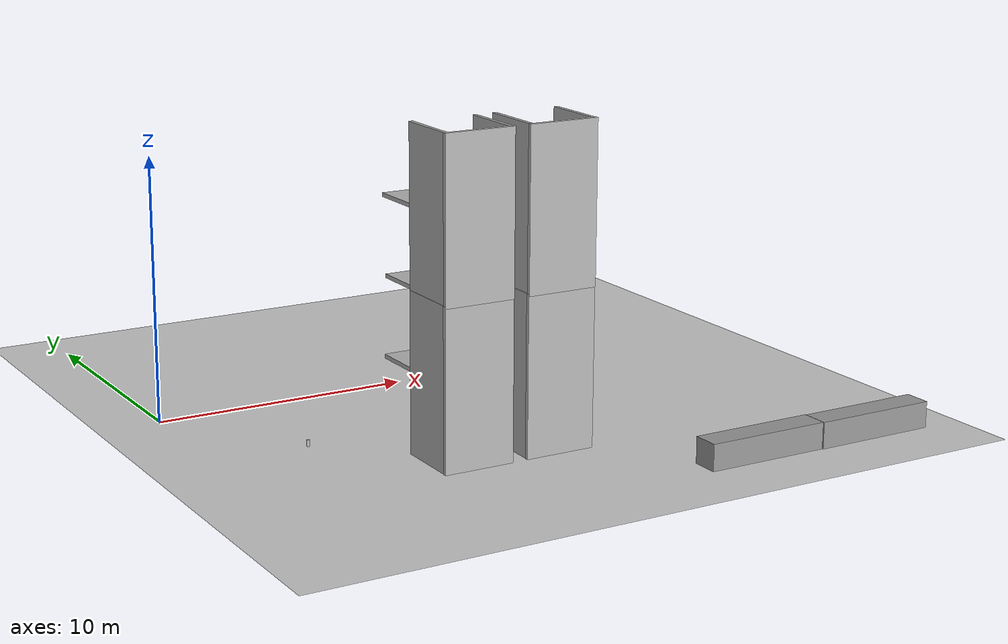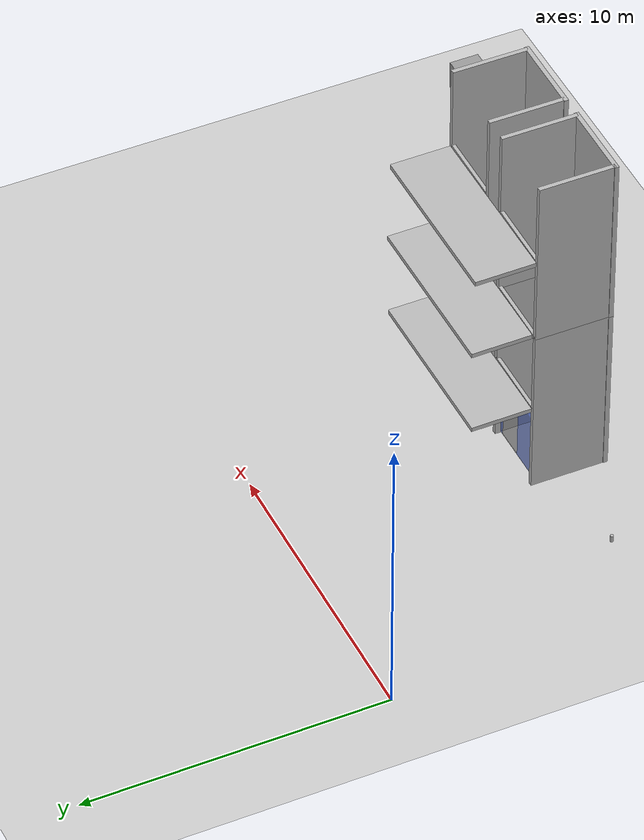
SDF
<sdf version="1.7">
 <world name="default">
  <model name="my_ground_plane">
   <static>1</static>
   <link name="link">
    <collision name="collision">
     <geometry><plane><normal>0 0 1</normal><size>6 6</size></plane></geometry>
     <surface><friction><ode><mu2>1</mu2><mu1>1</mu1></ode></friction></surface>
    </collision>
    <visual name="visual">
     <geometry><plane><normal>0 0 1</normal><size>46 46</size></plane></geometry>
     <cast_shadows>0</cast_shadows>
     <material>
      <script>
       <uri>model://my_ground_plane/materials/scripts</uri>
       <uri>model://my_ground_plane/materials/textures</uri>
       <name>MyGroundPlane/Texture1</name>
      </script>
     </material>
    </visual>
   </link>
   <pose>2.78178 3.19727 0 0 -0 0</pose>
  </model>
  <model name="beer">
   <link name="link">
    <pose>0 0 0.115 0 -0 0</pose>
    <inertial>
     <mass>0.39</mass>
     <inertia><ixx>0.00058</ixx><ixy>0</ixy><ixz>0</ixz><iyy>0.00058</iyy><iyz>0</iyz><izz>0.00019</izz></inertia>
    </inertial>
    <collision name="collision">
     <geometry><cylinder><radius>0.055</radius><length>0.23</length></cylinder></geometry>
    </collision>
    <visual name="visual">
     <geometry><cylinder><radius>0.055</radius><length>0.23</length></cylinder></geometry>
     <material>
      <script>
       <uri>model://beer/materials/scripts</uri>
       <uri>model://beer/materials/textures</uri>
       <name>Beer/Diffuse</name>
      </script>
     </material>
    </visual>
   </link>
   <pose>2.13181 -8.25349 1.19999 -2.5e-05 -4.4e-05 -0.000746</pose>
  </model>
  <model name="unit_box">
   <pose>21.7528 -14.0638 0.498243 -0 -0.000732 1e-05</pose>
   <link name="link">
    <inertial>
     <mass>1</mass>
     <inertia>
      <ixx>0.166667</ixx>
      <ixy>0</ixy>
      <ixz>0</ixz>
      <iyy>0.166667</iyy>
      <iyz>0</iyz>
      <izz>0.166667</izz>
     </inertia>
    </inertial>
    <collision name="collision"><geometry><box><size>4.79843 1 1</size></box></geometry></collision>
    <visual name="visual">
     <geometry><box><size>4.79843 1 1</size></box></geometry>
     <material>
      <script><name>Gazebo/Grey</name><uri>file://media/materials/scripts/gazebo.material</uri></script>
     </material>
    </visual>
   </link>
  </model>
  <model name="unit_box_clone">
   <pose>16.9431 -14.025 0.498243 -0 0.000732 -1e-05</pose>
   <link name="link">
    <inertial>
     <mass>1</mass>
     <inertia>
      <ixx>0.166667</ixx>
      <ixy>0</ixy>
      <ixz>0</ixz>
      <iyy>0.166667</iyy>
      <iyz>0</iyz>
      <izz>0.166667</izz>
     </inertia>
    </inertial>
    <collision name="collision"><geometry><box><size>4.79843 1 1</size></box></geometry></collision>
    <visual name="visual">
     <geometry><box><size>4.79843 1 1</size></box></geometry>
     <material>
      <script><name>Gazebo/Grey</name><uri>file://media/materials/scripts/gazebo.material</uri></script>
     </material>
    </visual>
   </link>
  </model>
  <model name="elevator">
   <pose>11 -9 0.095 0 -0 1.57</pose>
   <link name="link">
    <inertial>
     <mass>800</mass>
     <inertia><ixx>1</ixx><ixy>0</ixy><ixz>0</ixz><iyy>1</iyy><iyz>0</iyz><izz>1</izz></inertia>
    </inertial>
    <collision name="floor_collision"><geometry><box><size>2.25 2.25 0</size></box></geometry></collision>
    <visual name="floor_visual">
     <geometry><box><size>2.25 2.25 0</size></box></geometry>
     <material><script><name>Gazebo/Grey</name><uri>__default__</uri></script></material>
    </visual>
    <collision name="wall1_collision">
     <pose>1.0745 0.5725 1.125 0 -0 0</pose>
     <geometry><box><size>0.1 1.15 2.25</size></box></geometry>
    </collision>
    <visual name="wall1_visual">
     <pose>1.0745 0.5725 1.125 0 -0 0</pose>
     <geometry><box><size>0.1 1.15 2.25</size></box></geometry>
     <material><script><name>Gazebo/BlueTransparent</name><uri>__default__</uri></script></material>
    </visual>
    <collision name="wall2_collision">
     <pose>1.0745 -1.0625 1.125 0 -0 0</pose>
     <geometry><box><size>0.1 0.125 2.25</size></box></geometry>
    </collision>
    <visual name="wall2_visual">
     <pose>1.0745 -1.0625 1.125 0 -0 0</pose>
     <geometry><box><size>0.1 0.125 2.25</size></box></geometry>
     <material><script><name>Gazebo/BlueTransparent</name><uri>__default__</uri></script></material>
    </visual>
   </link>
   <link name="door">
    <pose>1.0745 -0.5 1.125 0 -0 0</pose>
    <collision name="collision"><geometry><box><size>0.08 1 2.25</size></box></geometry></collision>
    <visual name="visual">
     <geometry><box><size>0.08 1 2.25</size></box></geometry>
     <material><script><name>Gazebo/GreyTransparent</name><uri>__default__</uri></script></material>
    </visual>
    <inertial>
     <inertia><ixx>1</ixx><ixy>0</ixy><ixz>0</ixz><iyy>1</iyy><iyz>0</iyz><izz>1</izz></inertia>
     <mass>1</mass>
    </inertial>
   </link>
   <joint name="door" type="prismatic">
    <parent>link</parent>
    <child>door</child>
    <axis>
     <xyz>0 1 0</xyz>
     <limit><lower>0</lower><upper>1</upper><effort>10</effort></limit>
     <dynamics>
      <damping>2</damping>
      <spring_reference>0</spring_reference>
      <spring_stiffness>0</spring_stiffness>
     </dynamics>
    </axis>
   </joint>
   <joint name="lift" type="prismatic">
    <parent>world</parent>
    <child>link</child>
    <axis>
     <xyz>0 0 1</xyz>
     <limit><lower>0</lower><upper>10</upper><effort>100000</effort></limit>
     <dynamics>
      <damping>50</damping>
      <spring_reference>0</spring_reference>
      <spring_stiffness>0</spring_stiffness>
     </dynamics>
    </axis>
    <physics>
     <ode><implicit_spring_damper>1</implicit_spring_damper><limit><cfm>0</cfm><erp>0.2</erp></limit></ode>
    </physics>
   </joint>
   <plugin name="elevator_plugin" filename="libElevatorPlugin.so">
    <lift_joint>elevator::lift</lift_joint>
    <door_joint>elevator::door</door_joint>
    <floor_height>3.075</floor_height>
    <door_wait_time>15</door_wait_time>
    <topic>~/elevator</topic>
   </plugin>
  </model>
  <model name="elevator_shaft">
   <pose>10.9925 -8.96359 0 0 -0 1.56489</pose>
   <static>1</static>
   <link name="link">
    <collision name="shaft_wall1_collision">
     <pose>0 1.25 3 0 -0 0</pose>
     <geometry><box><size>2.5 0.15 6</size></box></geometry>
    </collision>
    <visual name="shaft_wall1_visual">
     <pose>0 1.25 3 0 -0 0</pose>
     <geometry><box><size>2.5 0.15 6</size></box></geometry>
    </visual>
    <collision name="shaft_wall2_collision">
     <pose>0 -1.25 3 0 -0 0</pose>
     <geometry><box><size>2.5 0.15 6</size></box></geometry>
    </collision>
    <visual name="shaft_wall2_visual">
     <pose>0 -1.25 3 0 -0 0</pose>
     <geometry><box><size>2.5 0.15 6</size></box></geometry>
    </visual>
    <collision name="shaft_wall3_collision">
     <pose>-1.25 0 3 0 -0 0</pose>
     <geometry><box><size>0.15 2.7 6</size></box></geometry>
    </collision>
    <visual name="shaft_wall3_visual">
     <pose>-1.25 0 3 0 -0 0</pose>
     <geometry><box><size>0.15 2.7 6</size></box></geometry>
    </visual>
    <collision name="floor0_collision">
     <pose>1.19 0 0 0 -0 0</pose>
     <geometry><box><size>0.12 2.5 0</size></box></geometry>
    </collision>
    <visual name="floor0_visual">
     <pose>1.19 0 0 0 -0 0</pose>
     <geometry><box><size>0.12 2.5 0</size></box></geometry>
    </visual>
    <collision name="floor1_collision">
     <pose>1.19 0 3.075 0 -0 0</pose>
     <geometry><box><size>0.12 2.5 0</size></box></geometry>
    </collision>
    <visual name="floor1_visual">
     <pose>1.19 0 3.075 0 -0 0</pose>
     <geometry><box><size>0.12 2.5 0</size></box></geometry>
    </visual>
   </link>
  </model>
  <model name="floor1">
   <pose>9.34723 -6.67943 3.075 0 -0 1.57226</pose>
   <static>1</static>
   <link name="link">
    <collision name="floor_collision"><geometry><box><size>2 5.78685 0.15</size></box></geometry></collision>
    <visual name="floor_visual"><geometry><box><size>2 5.78685 0.15</size></box></geometry></visual>
   </link>
  </model>
  <model name="elevator2">
   <pose>7.7 -9 0.095 0 -0 1.57</pose>
   <link name="link2">
    <inertial>
     <mass>800</mass>
     <inertia><ixx>1</ixx><ixy>0</ixy><ixz>0</ixz><iyy>1</iyy><iyz>0</iyz><izz>1</izz></inertia>
    </inertial>
    <collision name="floor_collision2"><geometry><box><size>2.25 2.25 0</size></box></geometry></collision>
    <visual name="floor_visual2">
     <geometry><box><size>2.25 2.25 0</size></box></geometry>
     <material><script><name>Gazebo/Grey</name><uri>__default__</uri></script></material>
    </visual>
    <collision name="wall1_collision2">
     <pose>1.0745 0.5725 1.125 0 -0 0</pose>
     <geometry><box><size>0.1 1.15 2.25</size></box></geometry>
    </collision>
    <visual name="wall1_visual2">
     <pose>1.0745 0.5725 1.125 0 -0 0</pose>
     <geometry><box><size>0.1 1.15 2.25</size></box></geometry>
     <material><script><name>Gazebo/BlueTransparent</name><uri>__default__</uri></script></material>
    </visual>
    <collision name="wall2_collision2">
     <pose>1.0745 -1.0625 1.125 0 -0 0</pose>
     <geometry><box><size>0.1 0.125 2.25</size></box></geometry>
    </collision>
    <visual name="wall2_visual2">
     <pose>1.0745 -1.0625 1.125 0 -0 0</pose>
     <geometry><box><size>0.1 0.125 2.25</size></box></geometry>
     <material><script><name>Gazebo/BlueTransparent</name><uri>__default__</uri></script></material>
    </visual>
   </link>
   <link name="door2">
    <pose>1.0745 -0.5 1.125 0 -0 0</pose>
    <collision name="collision2"><geometry><box><size>0.08 1 2.25</size></box></geometry></collision>
    <visual name="visual2">
     <geometry><box><size>0.08 1 2.25</size></box></geometry>
     <material><script><name>Gazebo/GreyTransparent</name><uri>__default__</uri></script></material>
    </visual>
    <inertial>
     <inertia><ixx>1</ixx><ixy>0</ixy><ixz>0</ixz><iyy>1</iyy><iyz>0</iyz><izz>1</izz></inertia>
     <mass>1</mass>
    </inertial>
   </link>
   <joint name="door2" type="prismatic">
    <parent>link2</parent>
    <child>door2</child>
    <axis>
     <xyz>0 1 0</xyz>
     <limit><lower>0</lower><upper>1</upper><effort>10</effort></limit>
     <dynamics>
      <damping>2</damping>
      <spring_reference>0</spring_reference>
      <spring_stiffness>0</spring_stiffness>
     </dynamics>
    </axis>
   </joint>
   <joint name="lift2" type="prismatic">
    <parent>world</parent>
    <child>link2</child>
    <axis>
     <xyz>0 0 1</xyz>
     <limit><lower>0</lower><upper>10</upper><effort>100000</effort></limit>
     <dynamics>
      <damping>50</damping>
      <spring_reference>0</spring_reference>
      <spring_stiffness>0</spring_stiffness>
     </dynamics>
    </axis>
    <physics>
     <ode><implicit_spring_damper>1</implicit_spring_damper><limit><cfm>0</cfm><erp>0.2</erp></limit></ode>
    </physics>
   </joint>
   <plugin name="elevator_plugin" filename="libElevatorPlugin.so">
    <lift_joint>elevator2::lift2</lift_joint>
    <door_joint>elevator2::door2</door_joint>
    <floor_height>3.075</floor_height>
    <door_wait_time>25</door_wait_time>
    <topic>~/elevator2</topic>
   </plugin>
  </model>
  <model name="elevator_shaft_clone_0">
   <static>1</static>
   <link name="link">
    <collision name="shaft_wall1_collision">
     <pose>0 1.25 3 0 -0 0</pose>
     <geometry><box><size>2.5 0.15 6</size></box></geometry>
    </collision>
    <visual name="shaft_wall1_visual">
     <pose>0 1.25 3 0 -0 0</pose>
     <geometry><box><size>2.5 0.15 6</size></box></geometry>
    </visual>
    <collision name="shaft_wall2_collision">
     <pose>0 -1.25 3 0 -0 0</pose>
     <geometry><box><size>2.5 0.15 6</size></box></geometry>
    </collision>
    <visual name="shaft_wall2_visual">
     <pose>0 -1.25 3 0 -0 0</pose>
     <geometry><box><size>2.5 0.15 6</size></box></geometry>
    </visual>
    <collision name="shaft_wall3_collision">
     <pose>-1.25 0 3 0 -0 0</pose>
     <geometry><box><size>0.15 2.7 6</size></box></geometry>
    </collision>
    <visual name="shaft_wall3_visual">
     <pose>-1.25 0 3 0 -0 0</pose>
     <geometry><box><size>0.15 2.7 6</size></box></geometry>
    </visual>
    <collision name="floor0_collision">
     <pose>1.19 0 0.075 0 -0 0</pose>
     <geometry><box><size>0.12 2.5 0.15</size></box></geometry>
    </collision>
    <visual name="floor0_visual">
     <pose>1.19 0 0.075 0 -0 0</pose>
     <geometry><box><size>0.12 2.5 0.15</size></box></geometry>
    </visual>
    <collision name="floor1_collision">
     <pose>1.19 0 3.075 0 -0 0</pose>
     <geometry><box><size>0.12 2.5 0.15</size></box></geometry>
    </collision>
    <visual name="floor1_visual">
     <pose>1.19 0 3.075 0 -0 0</pose>
     <geometry><box><size>0.12 2.5 0.15</size></box></geometry>
    </visual>
   </link>
   <pose>11.0129 -8.96752 5.91837 0 -0 1.56489</pose>
  </model>
  <model name="elevator_shaft_clone_0_clone">
   <static>1</static>
   <link name="link">
    <collision name="shaft_wall1_collision">
     <pose>0 1.25 3 0 -0 0</pose>
     <geometry><box><size>2.5 0.15 6</size></box></geometry>
    </collision>
    <visual name="shaft_wall1_visual">
     <pose>0 1.25 3 0 -0 0</pose>
     <geometry><box><size>2.5 0.15 6</size></box></geometry>
    </visual>
    <collision name="shaft_wall2_collision">
     <pose>0 -1.25 3 0 -0 0</pose>
     <geometry><box><size>2.5 0.15 6</size></box></geometry>
    </collision>
    <visual name="shaft_wall2_visual">
     <pose>0 -1.25 3 0 -0 0</pose>
     <geometry><box><size>2.5 0.15 6</size></box></geometry>
    </visual>
    <collision name="shaft_wall3_collision">
     <pose>-1.25 0 3 0 -0 0</pose>
     <geometry><box><size>0.15 2.7 6</size></box></geometry>
    </collision>
    <visual name="shaft_wall3_visual">
     <pose>-1.25 0 3 0 -0 0</pose>
     <geometry><box><size>0.15 2.7 6</size></box></geometry>
    </visual>
    <collision name="floor0_collision">
     <pose>1.19 0 0.075 0 -0 0</pose>
     <geometry><box><size>0.12 2.5 0.15</size></box></geometry>
    </collision>
    <visual name="floor0_visual">
     <pose>1.19 0 0.075 0 -0 0</pose>
     <geometry><box><size>0.12 2.5 0.15</size></box></geometry>
    </visual>
    <collision name="floor1_collision">
     <pose>1.19 0 3.075 0 -0 0</pose>
     <geometry><box><size>0.12 2.5 0.15</size></box></geometry>
    </collision>
    <visual name="floor1_visual">
     <pose>1.19 0 3.075 0 -0 0</pose>
     <geometry><box><size>0.12 2.5 0.15</size></box></geometry>
    </visual>
   </link>
   <pose>7.70649 -8.96373 5.91837 0 -0 1.56489</pose>
  </model>
  <model name="floor1_clone">
   <pose>9.42653 -6.67087 6.02648 0 -0 1.57226</pose>
   <static>1</static>
   <link name="link">
    <collision name="floor_collision"><geometry><box><size>2 5.78686 0.15</size></box></geometry></collision>
    <visual name="floor_visual"><geometry><box><size>2 5.78686 0.15</size></box></geometry></visual>
   </link>
  </model>
  <model name="floor1_clone_clone">
   <pose>9.31555 -6.68304 8.98548 0 -0 1.57226</pose>
   <static>1</static>
   <link name="link">
    <collision name="floor_collision"><geometry><box><size>2 5.78686 0.15</size></box></geometry></collision>
    <visual name="floor_visual"><geometry><box><size>2 5.78686 0.15</size></box></geometry></visual>
   </link>
  </model>
  <model name="elevator_shaft_clone">
   <static>1</static>
   <link name="link">
    <collision name="shaft_wall1_collision">
     <pose>0 1.25 3 0 -0 0</pose>
     <geometry><box><size>2.5 0.15 6</size></box></geometry>
    </collision>
    <visual name="shaft_wall1_visual">
     <pose>0 1.25 3 0 -0 0</pose>
     <geometry><box><size>2.5 0.15 6</size></box></geometry>
    </visual>
    <collision name="shaft_wall2_collision">
     <pose>0 -1.25 3 0 -0 0</pose>
     <geometry><box><size>2.5 0.15 6</size></box></geometry>
    </collision>
    <visual name="shaft_wall2_visual">
     <pose>0 -1.25 3 0 -0 0</pose>
     <geometry><box><size>2.5 0.15 6</size></box></geometry>
    </visual>
    <collision name="shaft_wall3_collision">
     <pose>-1.25 0 3 0 -0 0</pose>
     <geometry><box><size>0.15 2.7 6</size></box></geometry>
    </collision>
    <visual name="shaft_wall3_visual">
     <pose>-1.25 0 3 0 -0 0</pose>
     <geometry><box><size>0.15 2.7 6</size></box></geometry>
    </visual>
    <collision name="floor1_collision">
     <pose>1.19 0 3.075 0 -0 0</pose>
     <geometry><box><size>0.12 2.5 0</size></box></geometry>
    </collision>
    <visual name="floor1_visual">
     <pose>1.19 0 3.075 0 -0 0</pose>
     <geometry><box><size>0.12 2.5 0.15</size></box></geometry>
    </visual>
   </link>
   <pose>7.69899 -8.95975 0 0 -0 1.56489</pose>
  </model>
 </world>
</sdf>
